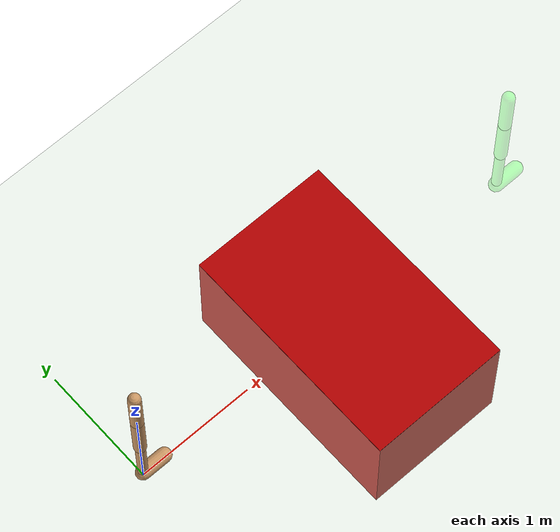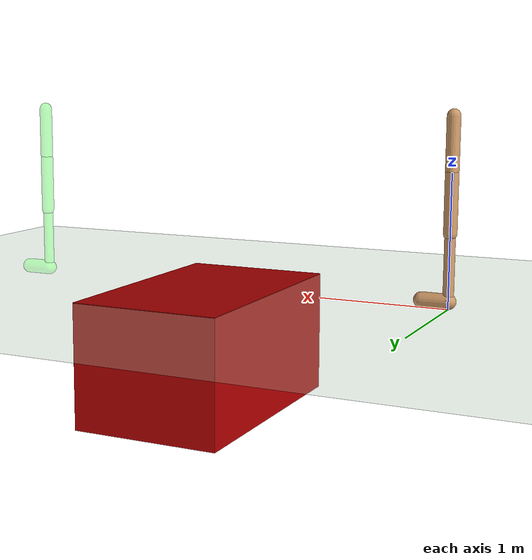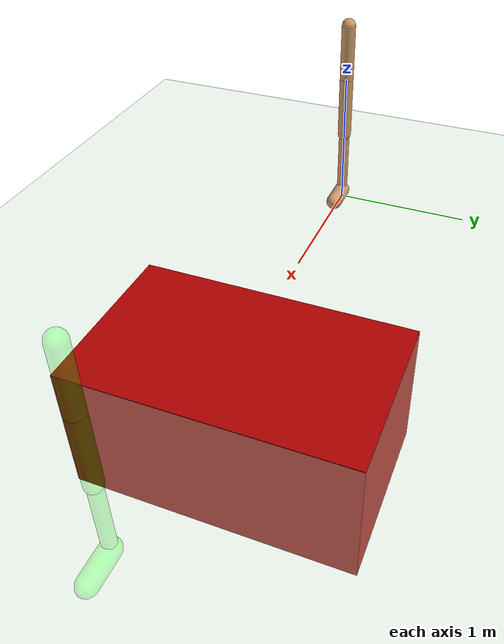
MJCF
<mujoco model="walker_2d">
    <compiler angle="radian" />
    <option integrator="RK4" />
    <size nconmax="100" njmax="500" />
    <default class="main">
      <!-- Disable warmstart if your dynamics computations are random states.
      Enable if your dynamics computations will form a full trajectory -->
        <joint armature="1" stiffness = "15" damping="1" limited="true" />
        <geom conaffinity="0" friction="0.7 0.1 0.1" rgba="0.8 0.6 0.4 1" />
    </default>
    <asset>
        <texture builtin="gradient" height="600" rgb1="0.4 0.5 0.6" rgb2="0 0 0" type="skybox" width="100" />
        <texture builtin="flat" height="762" mark="cross" markrgb="1 1 1" name="texgeom" rgb1="0.8 0.6 0.4" rgb2="0.8 0.6 0.4" type="cube" width="127" />
        <texture builtin="checker" height="100" name="texplane" rgb1="0 0 0" rgb2="0.8 0.8 0.8" type="2d" width="100" />
        <material name="MatPlane" reflectance="0.2" shininess="1" specular="1" texrepeat="60 60" texture="texplane" />
        <material name="geom" texture="texgeom" texuniform="true" />
    </asset>
    <worldbody>
        <geom conaffinity="1" material="MatPlane" name="floor" rgba="0.8 0.9 0.8 1" size="40 40 40" type="plane" />
        <light cutoff="100" diffuse="1 1 1" dir="0 0 -1" directional="true" exponent="1" pos="0 0 1.3" specular="0.1 0.1 0.1" />
        <include file="walker2d/walker2d.xml"/>
        <body name="step0" pos="2.0 0 0.0">
            <geom conaffinity="1" pos="0 0 -0.5" rgba="0.7 0 0 1" size="0.6 1 0.5" type="box" />
        </body>
    </worldbody>
    <include file="walker2d/walker2d_actuator.xml"/>
    <keyframe>
      <key qpos='0 1.19877 -0.11777 0.206598 8.73749e-05 -0.240887 -0.146861 -0.419388 0.448905'/> <!--semi stable stand-->
    </keyframe>
</mujoco>

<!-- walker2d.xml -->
<mujocoinclude>
  <body name="torso" pos="0 0 1.21">
    <joint armature="0" axis="1 0 0" stiffness="0" damping="0" limited="false" name="rootx" pos="0 0 -1.25" type="slide" />
    <joint armature="0" axis="0 0 1" stiffness="0" damping="0" limited="false" name="rootz" pos="0 0 -1.25" ref="1.25" type="slide" />
    <joint armature="0" axis="0 1 0" stiffness="0" damping="0" limited="false" name="rooty" pos="0 0 0" />
    <geom friction="0.9 0.1 0.1" name="torso_geom" size="0.05 0.2" type="capsule" />
    <camera mode="trackcom" name="track" pos="0 -3 -0.25" quat="0.707107 0.707107 0 0" />
    <body name="thigh_right" pos="0 0 -0.2">
      <joint axis="0 -1 0" name="thigh_right_joint" pos="0 0 0" range="-1.57 1.57" />
      <geom friction="0.9 0.1 0.1" name="thigh_geom" pos="0 0 -0.225" size="0.05 0.225" type="capsule" />
      <body name="leg_right" pos="0 0 -0.7">
          <joint axis="0 -1 0" name="leg_right_joint" pos="0 0 0.25" range="-2.61799 0" />
          <geom friction="0.9 0.1 0.1" name="leg_right_geom" size="0.04 0.25" type="capsule" />
          <body name="foot_right" pos="0.2 0 -0.35">
            <joint axis="0 -1 0" name="foot_right_joint" pos="-0.2 0 0.1" range="-0.785398 0.785398" />
            <geom friction="0.9 0.1 0.1" name="foot_right_geom" pos="-0.1 0 0.1" quat="0.707107 0 -0.707107 0" size="0.06 0.1" type="capsule" />
          </body>
      </body>
    </body>
    <body name="thigh_left" pos="0 0 -0.2">
      <joint axis="0 -1 0" name="thigh_left_joint" pos="0 0 0" range="-1.57 1.57" />
      <geom friction="0.9 0.1 0.1" name="thigh_left_geom" pos="0 0 -0.225" rgba="0.7 0.3 0.6 1" size="0.05 0.225" type="capsule" />
      <body name="leg_left" pos="0 0 -0.7">
        <joint axis="0 -1 0" name="leg_left_joint" pos="0 0 0.25" range="-2.61799 0" />
        <geom friction="0.9 0.1 0.1" name="leg_left_geom" rgba="0.7 0.3 0.6 1" size="0.04 0.25" type="capsule" />
        <body name="foot_left" pos="0.2 0 -0.35">
          <joint axis="0 -1 0" name="foot_left_joint" pos="-0.2 0 0.1" range="-0.785398 0.785398" />
          <geom friction="0.9 0.1 0.1" name="foot_left_geom" pos="-0.1 0 0.1" quat="0.707107 0 -0.707107 0" rgba="0.7 0.3 0.6 1" size="0.06 0.1" type="capsule" />
        </body>
      </body>
    </body>
  </body>
  <body name="gtorso" pos="3.5 0 1.19877">
    <geom friction="0.9 0.1 0.1" name="gtorso_geom" rgba="0 1 0 0.3" size="0.05 0.2" type="capsule" />
    <body name="gthigh_right" pos="-1 0 -0.2">
      <geom friction="0.9 0.1 0.1" name="gthigh_geom" pos="1 0 -0.225" rgba="0 1 0 0.3" size="0.05 0.225" type="capsule" />
      <body name="gleg_right" pos="0 0 -0.7">
        <geom friction="0.9 0.1 0.1" name="gleg_geom" pos="1 0 0" rgba="0 1 0 0.3" size="0.04 0.25" type="capsule" />
        <body name="gfoot_right" pos="0.2 0 -0.35">
          <geom friction="0.9 0.1 0.1" name="gfoot_geom" pos="0.9 0 0.1" quat="0.707107 0 -0.707107 0" rgba="0 1 0 0.3" size="0.06 0.1" type="capsule" />
        </body>
      </body>
    </body>
    <body name="gthigh_left" pos="-1 0 -0.2">
      <geom friction="0.9 0.1 0.1" name="gthigh_left_geom" pos="1 0 -0.225" rgba="0 1 0 0.3" size="0.05 0.225" type="capsule" />
      <body name="gleg_left" pos="1 0 -0.7">
        <geom friction="0.9 0.1 0.1" name="gleg_left_geom" rgba="0 1 0 0.3" size="0.04 0.25" type="capsule" />
        <body name="gfoot_left" pos="-0.8 0 -0.35">
          <geom friction="0.9 0.1 0.1" name="gfoot_left_geom" pos="0.9 0 0.1" quat="0.707107 0 -0.707107 0" rgba="0 1 0 0.3" size="0.06 0.1" type="capsule" />
        </body>
      </body>
    </body>
  </body>
</mujocoinclude>

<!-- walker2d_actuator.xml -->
<mujocoinclude>
  <actuator>
    <general ctrllimited="true" ctrlrange="-1 1" gear="100 0 0 0 0 0" joint="thigh_right_joint" name="thigh_right_joint_motor" />
    <general ctrllimited="true" ctrlrange="-1 1" gear="100 0 0 0 0 0" joint="leg_right_joint" name="leg_right_joint_motor" />
    <general ctrllimited="true" ctrlrange="-1 1" gear="100 0 0 0 0 0" joint="foot_right_joint" name="foot_right_joint_motor" />
    <general ctrllimited="true" ctrlrange="-1 1" gear="100 0 0 0 0 0" joint="thigh_left_joint" name="thigh_left_joint_motor" />
    <general ctrllimited="true" ctrlrange="-1 1" gear="100 0 0 0 0 0" joint="leg_left_joint" name="leg_left_joint_motor" />
    <general ctrllimited="true" ctrlrange="-1 1" gear="100 0 0 0 0 0" joint="foot_left_joint" name="foot_left_joint_motor" />
  </actuator>
</mujocoinclude>
